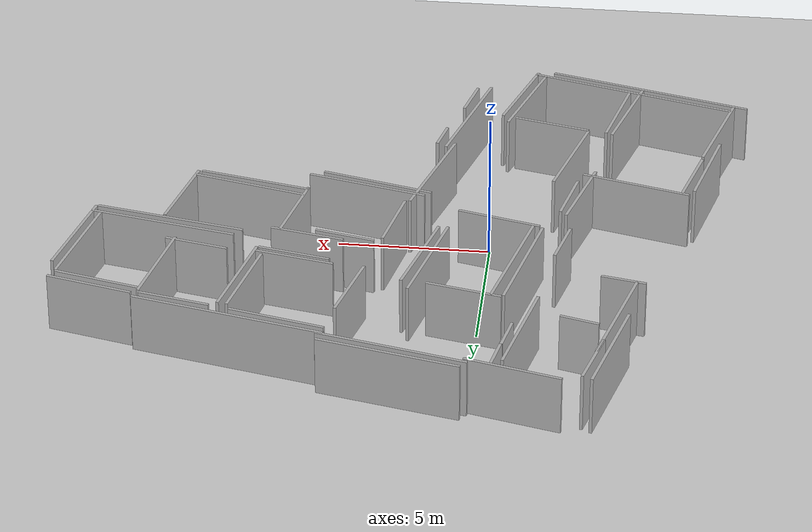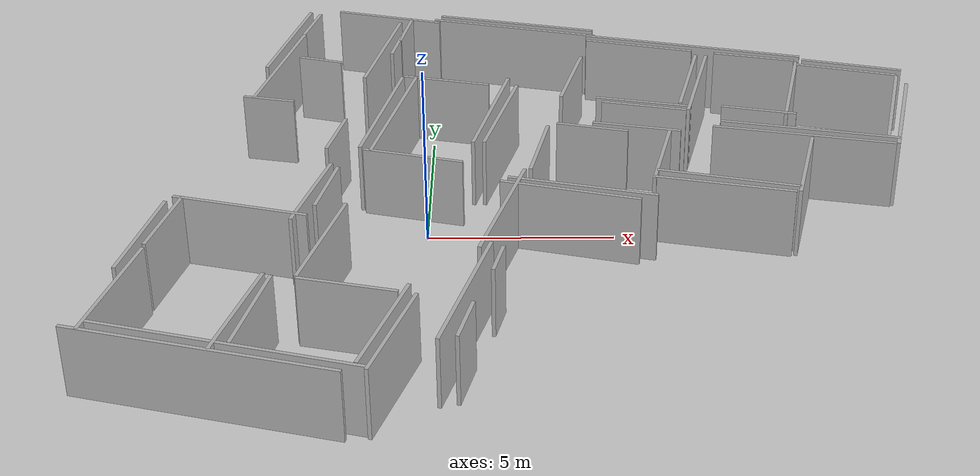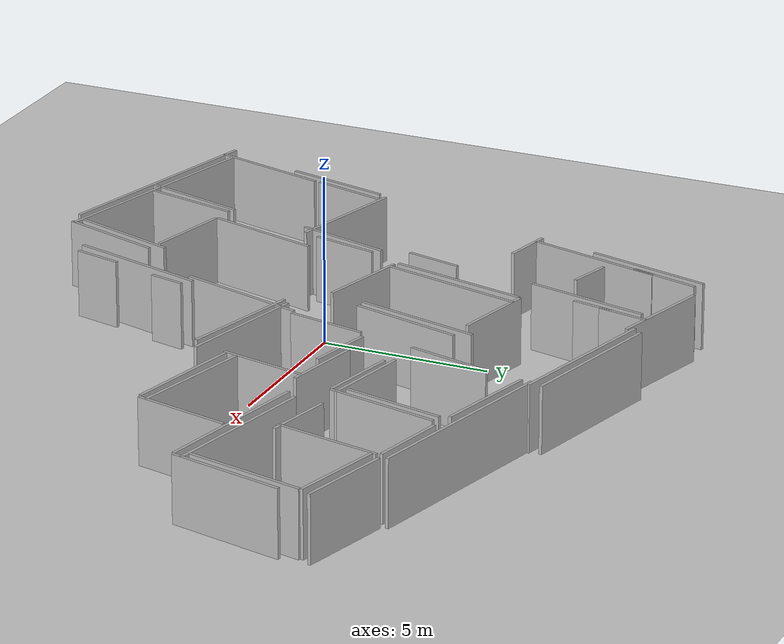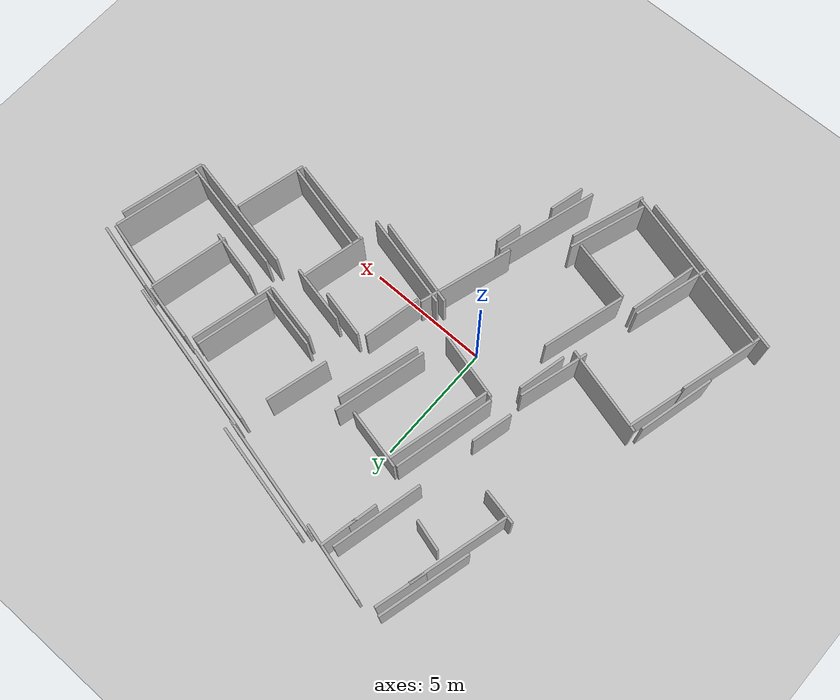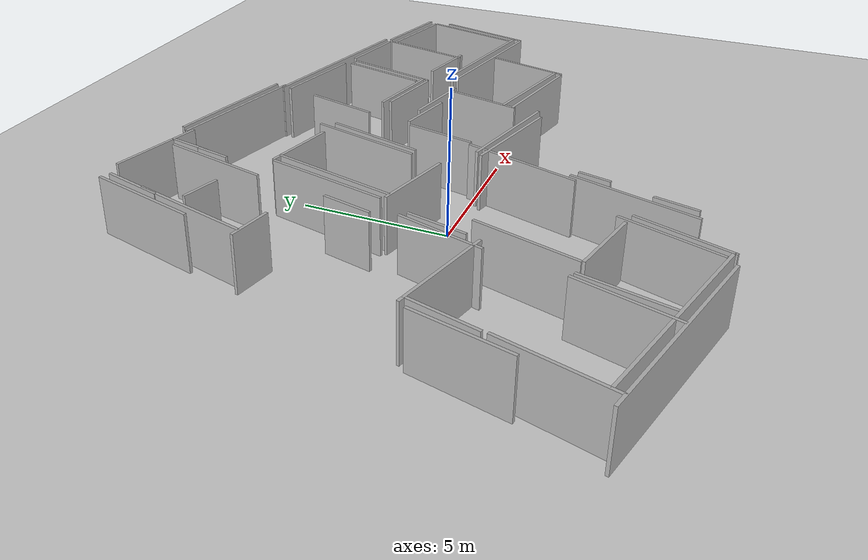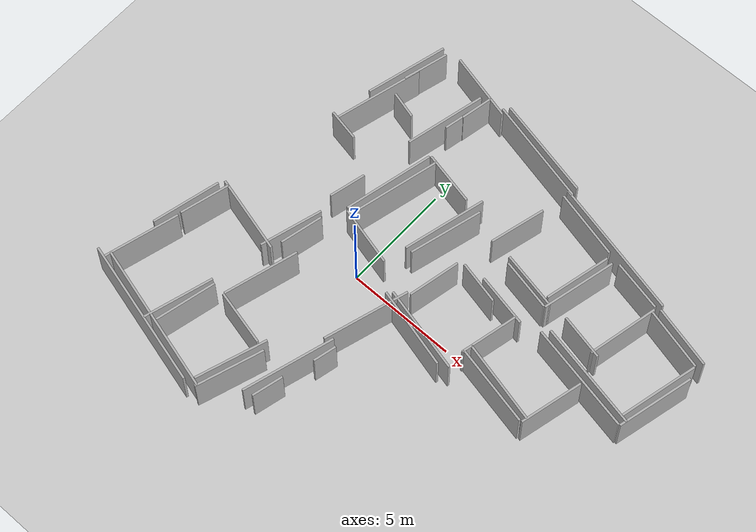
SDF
<?xml version="1.0" ?>
<sdf version="1.6">
  <world name="slam_world">
    <light name="sun" type="directional">
      <pose>0 0 10 0 0 0</pose>
      <diffuse>0.8 0.8 0.8 1</diffuse>
      <direction>-0.5 0.1 -0.9</direction>
    </light>
    <model name="ground_plane">
      <static>true</static>
      <link name="link">
        <collision name="collision">
          <geometry>
            <plane>
              <normal>0 0 1</normal>
              <size>100 100</size>
            </plane>
          </geometry>
        </collision>
        <visual name="visual">
          <geometry>
            <plane>
              <normal>0 0 1</normal>
              <size>100 100</size>
            </plane>
          </geometry>
          <material>
            <ambient>0.8 0.8 0.8 1</ambient>
            <diffuse>0.8 0.8 0.8 1</diffuse>
            <specular>0.8 0.8 0.8 1</specular>
          </material>
        </visual>
      </link>
    </model>
    <model name="wall_0">
      <static>true</static>
      <pose>7.635000000000002 7.485 1.0 0 0 -0.22796707182150797</pose>
      <link name="link">
        <collision name="collision">
          <geometry>
            <box>
              <size>6.4159956359087404 0.1 2.0</size>
            </box>
          </geometry>
        </collision>
        <visual name="visual">
          <geometry>
            <box>
              <size>6.4159956359087404 0.1 2.0</size>
            </box>
          </geometry>
          <material>
            <ambient>0.5 0.5 0.5 1</ambient>
            <diffuse>0.7 0.7 0.7 1</diffuse>
          </material>
        </visual>
      </link>
    </model>
    <model name="wall_1">
      <static>true</static>
      <pose>9.410000000000002 6.76 1.0 0 0 -0.21406068356382144</pose>
      <link name="link">
        <collision name="collision">
          <geometry>
            <box>
              <size>2.3537204591879646 0.1 2.0</size>
            </box>
          </geometry>
        </collision>
        <visual name="visual">
          <geometry>
            <box>
              <size>2.3537204591879646 0.1 2.0</size>
            </box>
          </geometry>
          <material>
            <ambient>0.5 0.5 0.5 1</ambient>
            <diffuse>0.7 0.7 0.7 1</diffuse>
          </material>
        </visual>
      </link>
    </model>
    <model name="wall_2">
      <static>true</static>
      <pose>1.160000000000001 -5.34 1.0 0 0 1.2860658882721843</pose>
      <link name="link">
        <collision name="collision">
          <geometry>
            <box>
              <size>4.272001872658766 0.1 2.0</size>
            </box>
          </geometry>
        </collision>
        <visual name="visual">
          <geometry>
            <box>
              <size>4.272001872658766 0.1 2.0</size>
            </box>
          </geometry>
          <material>
            <ambient>0.5 0.5 0.5 1</ambient>
            <diffuse>0.7 0.7 0.7 1</diffuse>
          </material>
        </visual>
      </link>
    </model>
    <model name="wall_3">
      <static>true</static>
      <pose>-4.1899999999999995 -6.19 1.0 0 0 1.2882413743253092</pose>
      <link name="link">
        <collision name="collision">
          <geometry>
            <box>
              <size>3.228002478313794 0.1 2.0</size>
            </box>
          </geometry>
        </collision>
        <visual name="visual">
          <geometry>
            <box>
              <size>3.228002478313794 0.1 2.0</size>
            </box>
          </geometry>
          <material>
            <ambient>0.5 0.5 0.5 1</ambient>
            <diffuse>0.7 0.7 0.7 1</diffuse>
          </material>
        </visual>
      </link>
    </model>
    <model name="wall_4">
      <static>true</static>
      <pose>12.010000000000003 5.91 1.0 0 0 -0.24497866312686387</pose>
      <link name="link">
        <collision name="collision">
          <geometry>
            <box>
              <size>2.886173937932363 0.1 2.0</size>
            </box>
          </geometry>
        </collision>
        <visual name="visual">
          <geometry>
            <box>
              <size>2.886173937932363 0.1 2.0</size>
            </box>
          </geometry>
          <material>
            <ambient>0.5 0.5 0.5 1</ambient>
            <diffuse>0.7 0.7 0.7 1</diffuse>
          </material>
        </visual>
      </link>
    </model>
    <model name="wall_5">
      <static>true</static>
      <pose>1.1850000000000014 -6.590000000000001 1.0 0 0 1.3258176636680328</pose>
      <link name="link">
        <collision name="collision">
          <geometry>
            <box>
              <size>1.4430869689661816 0.1 2.0</size>
            </box>
          </geometry>
        </collision>
        <visual name="visual">
          <geometry>
            <box>
              <size>1.4430869689661816 0.1 2.0</size>
            </box>
          </geometry>
          <material>
            <ambient>0.5 0.5 0.5 1</ambient>
            <diffuse>0.7 0.7 0.7 1</diffuse>
          </material>
        </visual>
      </link>
    </model>
    <model name="wall_6">
      <static>true</static>
      <pose>-3.9149999999999987 8.735000000000001 1.0 0 0 1.308676485529424</pose>
      <link name="link">
        <collision name="collision">
          <geometry>
            <box>
              <size>2.122498527679113 0.1 2.0</size>
            </box>
          </geometry>
        </collision>
        <visual name="visual">
          <geometry>
            <box>
              <size>2.122498527679113 0.1 2.0</size>
            </box>
          </geometry>
          <material>
            <ambient>0.5 0.5 0.5 1</ambient>
            <diffuse>0.7 0.7 0.7 1</diffuse>
          </material>
        </visual>
      </link>
    </model>
    <model name="wall_7">
      <static>true</static>
      <pose>-6.539999999999999 -2.215 1.0 0 0 1.3101939350475553</pose>
      <link name="link">
        <collision name="collision">
          <geometry>
            <box>
              <size>2.328626204439004 0.1 2.0</size>
            </box>
          </geometry>
        </collision>
        <visual name="visual">
          <geometry>
            <box>
              <size>2.328626204439004 0.1 2.0</size>
            </box>
          </geometry>
          <material>
            <ambient>0.5 0.5 0.5 1</ambient>
            <diffuse>0.7 0.7 0.7 1</diffuse>
          </material>
        </visual>
      </link>
    </model>
    <model name="wall_8">
      <static>true</static>
      <pose>-1.4899999999999993 9.56 1.0 0 0 -0.25255427577805983</pose>
      <link name="link">
        <collision name="collision">
          <geometry>
            <box>
              <size>3.2015621187164243 0.1 2.0</size>
            </box>
          </geometry>
        </collision>
        <visual name="visual">
          <geometry>
            <box>
              <size>3.2015621187164243 0.1 2.0</size>
            </box>
          </geometry>
          <material>
            <ambient>0.5 0.5 0.5 1</ambient>
            <diffuse>0.7 0.7 0.7 1</diffuse>
          </material>
        </visual>
      </link>
    </model>
    <model name="wall_9">
      <static>true</static>
      <pose>-4.889999999999999 -7.69 1.0 0 0 -0.2624593998262763</pose>
      <link name="link">
        <collision name="collision">
          <geometry>
            <box>
              <size>6.937578828380978 0.1 2.0</size>
            </box>
          </geometry>
        </collision>
        <visual name="visual">
          <geometry>
            <box>
              <size>6.937578828380978 0.1 2.0</size>
            </box>
          </geometry>
          <material>
            <ambient>0.5 0.5 0.5 1</ambient>
            <diffuse>0.7 0.7 0.7 1</diffuse>
          </material>
        </visual>
      </link>
    </model>
    <model name="wall_10">
      <static>true</static>
      <pose>3.985000000000002 5.5600000000000005 1.0 0 0 1.3164282682416306</pose>
      <link name="link">
        <collision name="collision">
          <geometry>
            <box>
              <size>2.583118270617898 0.1 2.0</size>
            </box>
          </geometry>
        </collision>
        <visual name="visual">
          <geometry>
            <box>
              <size>2.583118270617898 0.1 2.0</size>
            </box>
          </geometry>
          <material>
            <ambient>0.5 0.5 0.5 1</ambient>
            <diffuse>0.7 0.7 0.7 1</diffuse>
          </material>
        </visual>
      </link>
    </model>
    <model name="wall_11">
      <static>true</static>
      <pose>2.035000000000001 -1.6400000000000001 1.0 0 0 1.2769269917624289</pose>
      <link name="link">
        <collision name="collision">
          <geometry>
            <box>
              <size>3.9702015062210636 0.1 2.0</size>
            </box>
          </geometry>
        </collision>
        <visual name="visual">
          <geometry>
            <box>
              <size>3.9702015062210636 0.1 2.0</size>
            </box>
          </geometry>
          <material>
            <ambient>0.5 0.5 0.5 1</ambient>
            <diffuse>0.7 0.7 0.7 1</diffuse>
          </material>
        </visual>
      </link>
    </model>
    <model name="wall_12">
      <static>true</static>
      <pose>9.185 3.4850000000000003 1.0 0 0 -0.21608497229678686</pose>
      <link name="link">
        <collision name="collision">
          <geometry>
            <box>
              <size>2.0988091861815366 0.1 2.0</size>
            </box>
          </geometry>
        </collision>
        <visual name="visual">
          <geometry>
            <box>
              <size>2.0988091861815366 0.1 2.0</size>
            </box>
          </geometry>
          <material>
            <ambient>0.5 0.5 0.5 1</ambient>
            <diffuse>0.7 0.7 0.7 1</diffuse>
          </material>
        </visual>
      </link>
    </model>
    <model name="wall_13">
      <static>true</static>
      <pose>-0.9399999999999991 8.66 1.0 0 0 1.373400766945016</pose>
      <link name="link">
        <collision name="collision">
          <geometry>
            <box>
              <size>1.5297058540778354 0.1 2.0</size>
            </box>
          </geometry>
        </collision>
        <visual name="visual">
          <geometry>
            <box>
              <size>1.5297058540778354 0.1 2.0</size>
            </box>
          </geometry>
          <material>
            <ambient>0.5 0.5 0.5 1</ambient>
            <diffuse>0.7 0.7 0.7 1</diffuse>
          </material>
        </visual>
      </link>
    </model>
    <model name="wall_14">
      <static>true</static>
      <pose>-1.3649999999999989 3.5100000000000007 1.0 0 0 1.3431070070262408</pose>
      <link name="link">
        <collision name="collision">
          <geometry>
            <box>
              <size>4.208622102303793 0.1 2.0</size>
            </box>
          </geometry>
        </collision>
        <visual name="visual">
          <geometry>
            <box>
              <size>4.208622102303793 0.1 2.0</size>
            </box>
          </geometry>
          <material>
            <ambient>0.5 0.5 0.5 1</ambient>
            <diffuse>0.7 0.7 0.7 1</diffuse>
          </material>
        </visual>
      </link>
    </model>
    <model name="wall_15">
      <static>true</static>
      <pose>-4.414999999999999 8.06 1.0 0 0 1.3194685426340562</pose>
      <link name="link">
        <collision name="collision">
          <geometry>
            <box>
              <size>3.8200130889828103 0.1 2.0</size>
            </box>
          </geometry>
        </collision>
        <visual name="visual">
          <geometry>
            <box>
              <size>3.8200130889828103 0.1 2.0</size>
            </box>
          </geometry>
          <material>
            <ambient>0.5 0.5 0.5 1</ambient>
            <diffuse>0.7 0.7 0.7 1</diffuse>
          </material>
        </visual>
      </link>
    </model>
    <model name="wall_16">
      <static>true</static>
      <pose>-2.564999999999999 -0.565 1.0 0 0 1.3439974787410107</pose>
      <link name="link">
        <collision name="collision">
          <geometry>
            <box>
              <size>2.00124960961895 0.1 2.0</size>
            </box>
          </geometry>
        </collision>
        <visual name="visual">
          <geometry>
            <box>
              <size>2.00124960961895 0.1 2.0</size>
            </box>
          </geometry>
          <material>
            <ambient>0.5 0.5 0.5 1</ambient>
            <diffuse>0.7 0.7 0.7 1</diffuse>
          </material>
        </visual>
      </link>
    </model>
    <model name="wall_17">
      <static>true</static>
      <pose>-4.3149999999999995 -7.515000000000001 1.0 0 0 -0.26750518132705736</pose>
      <link name="link">
        <collision name="collision">
          <geometry>
            <box>
              <size>6.998928489418935 0.1 2.0</size>
            </box>
          </geometry>
        </collision>
        <visual name="visual">
          <geometry>
            <box>
              <size>6.998928489418935 0.1 2.0</size>
            </box>
          </geometry>
          <material>
            <ambient>0.5 0.5 0.5 1</ambient>
            <diffuse>0.7 0.7 0.7 1</diffuse>
          </material>
        </visual>
      </link>
    </model>
    <model name="wall_18">
      <static>true</static>
      <pose>10.260000000000002 2.0600000000000005 1.0 0 0 -0.2013171083746408</pose>
      <link name="link">
        <collision name="collision">
          <geometry>
            <box>
              <size>5.000999900019994 0.1 2.0</size>
            </box>
          </geometry>
        </collision>
        <visual name="visual">
          <geometry>
            <box>
              <size>5.000999900019994 0.1 2.0</size>
            </box>
          </geometry>
          <material>
            <ambient>0.5 0.5 0.5 1</ambient>
            <diffuse>0.7 0.7 0.7 1</diffuse>
          </material>
        </visual>
      </link>
    </model>
    <model name="wall_19">
      <static>true</static>
      <pose>10.460000000000003 2.3599999999999994 1.0 0 0 -0.20539538918976735</pose>
      <link name="link">
        <collision name="collision">
          <geometry>
            <box>
              <size>4.903060268852506 0.1 2.0</size>
            </box>
          </geometry>
        </collision>
        <visual name="visual">
          <geometry>
            <box>
              <size>4.903060268852506 0.1 2.0</size>
            </box>
          </geometry>
          <material>
            <ambient>0.5 0.5 0.5 1</ambient>
            <diffuse>0.7 0.7 0.7 1</diffuse>
          </material>
        </visual>
      </link>
    </model>
    <model name="wall_20">
      <static>true</static>
      <pose>-1.1649999999999991 7.660000000000001 1.0 0 0 1.3654009376051295</pose>
      <link name="link">
        <collision name="collision">
          <geometry>
            <box>
              <size>1.2257650672131273 0.1 2.0</size>
            </box>
          </geometry>
        </collision>
        <visual name="visual">
          <geometry>
            <box>
              <size>1.2257650672131273 0.1 2.0</size>
            </box>
          </geometry>
          <material>
            <ambient>0.5 0.5 0.5 1</ambient>
            <diffuse>0.7 0.7 0.7 1</diffuse>
          </material>
        </visual>
      </link>
    </model>
    <model name="wall_21">
      <static>true</static>
      <pose>1.9350000000000023 -4.015000000000001 1.0 0 0 1.3370531459259951</pose>
      <link name="link">
        <collision name="collision">
          <geometry>
            <box>
              <size>1.079351657246145 0.1 2.0</size>
            </box>
          </geometry>
        </collision>
        <visual name="visual">
          <geometry>
            <box>
              <size>1.079351657246145 0.1 2.0</size>
            </box>
          </geometry>
          <material>
            <ambient>0.5 0.5 0.5 1</ambient>
            <diffuse>0.7 0.7 0.7 1</diffuse>
          </material>
        </visual>
      </link>
    </model>
    <model name="wall_22">
      <static>true</static>
      <pose>0.3850000000000011 5.335 1.0 0 0 -0.22082876972934792</pose>
      <link name="link">
        <collision name="collision">
          <geometry>
            <box>
              <size>2.510975905897944 0.1 2.0</size>
            </box>
          </geometry>
        </collision>
        <visual name="visual">
          <geometry>
            <box>
              <size>2.510975905897944 0.1 2.0</size>
            </box>
          </geometry>
          <material>
            <ambient>0.5 0.5 0.5 1</ambient>
            <diffuse>0.7 0.7 0.7 1</diffuse>
          </material>
        </visual>
      </link>
    </model>
    <model name="wall_23">
      <static>true</static>
      <pose>2.410000000000001 9.084999999999999 1.0 0 0 -0.2244160090371457</pose>
      <link name="link">
        <collision name="collision">
          <geometry>
            <box>
              <size>4.718315377335432 0.1 2.0</size>
            </box>
          </geometry>
        </collision>
        <visual name="visual">
          <geometry>
            <box>
              <size>4.718315377335432 0.1 2.0</size>
            </box>
          </geometry>
          <material>
            <ambient>0.5 0.5 0.5 1</ambient>
            <diffuse>0.7 0.7 0.7 1</diffuse>
          </material>
        </visual>
      </link>
    </model>
    <model name="wall_24">
      <static>true</static>
      <pose>5.985000000000002 3.76 1.0 0 0 -0.20963984587421255</pose>
      <link name="link">
        <collision name="collision">
          <geometry>
            <box>
              <size>2.402602755346792 0.1 2.0</size>
            </box>
          </geometry>
        </collision>
        <visual name="visual">
          <geometry>
            <box>
              <size>2.402602755346792 0.1 2.0</size>
            </box>
          </geometry>
          <material>
            <ambient>0.5 0.5 0.5 1</ambient>
            <diffuse>0.7 0.7 0.7 1</diffuse>
          </material>
        </visual>
      </link>
    </model>
    <model name="wall_25">
      <static>true</static>
      <pose>7.835000000000001 -0.5400000000000005 1.0 0 0 -0.21576619640704234</pose>
      <link name="link">
        <collision name="collision">
          <geometry>
            <box>
              <size>3.7366428783066743 0.1 2.0</size>
            </box>
          </geometry>
        </collision>
        <visual name="visual">
          <geometry>
            <box>
              <size>3.7366428783066743 0.1 2.0</size>
            </box>
          </geometry>
          <material>
            <ambient>0.5 0.5 0.5 1</ambient>
            <diffuse>0.7 0.7 0.7 1</diffuse>
          </material>
        </visual>
      </link>
    </model>
    <model name="wall_26">
      <static>true</static>
      <pose>4.110000000000002 -0.6150000000000002 1.0 0 0 -0.23893644058616323</pose>
      <link name="link">
        <collision name="collision">
          <geometry>
            <box>
              <size>4.014037867285261 0.1 2.0</size>
            </box>
          </geometry>
        </collision>
        <visual name="visual">
          <geometry>
            <box>
              <size>4.014037867285261 0.1 2.0</size>
            </box>
          </geometry>
          <material>
            <ambient>0.5 0.5 0.5 1</ambient>
            <diffuse>0.7 0.7 0.7 1</diffuse>
          </material>
        </visual>
      </link>
    </model>
    <model name="wall_27">
      <static>true</static>
      <pose>-1.5649999999999986 7.335 1.0 0 0 1.3419974814076712</pose>
      <link name="link">
        <collision name="collision">
          <geometry>
            <box>
              <size>3.7476659402887025 0.1 2.0</size>
            </box>
          </geometry>
        </collision>
        <visual name="visual">
          <geometry>
            <box>
              <size>3.7476659402887025 0.1 2.0</size>
            </box>
          </geometry>
          <material>
            <ambient>0.5 0.5 0.5 1</ambient>
            <diffuse>0.7 0.7 0.7 1</diffuse>
          </material>
        </visual>
      </link>
    </model>
    <model name="wall_28">
      <static>true</static>
      <pose>-4.514999999999999 6.359999999999999 1.0 0 0 1.3140879963615109</pose>
      <link name="link">
        <collision name="collision">
          <geometry>
            <box>
              <size>4.135516896350443 0.1 2.0</size>
            </box>
          </geometry>
        </collision>
        <visual name="visual">
          <geometry>
            <box>
              <size>4.135516896350443 0.1 2.0</size>
            </box>
          </geometry>
          <material>
            <ambient>0.5 0.5 0.5 1</ambient>
            <diffuse>0.7 0.7 0.7 1</diffuse>
          </material>
        </visual>
      </link>
    </model>
    <model name="wall_29">
      <static>true</static>
      <pose>-7.014999999999999 -2.8400000000000003 1.0 0 0 1.3334220798217258</pose>
      <link name="link">
        <collision name="collision">
          <geometry>
            <box>
              <size>3.189435686763413 0.1 2.0</size>
            </box>
          </geometry>
        </collision>
        <visual name="visual">
          <geometry>
            <box>
              <size>3.189435686763413 0.1 2.0</size>
            </box>
          </geometry>
          <material>
            <ambient>0.5 0.5 0.5 1</ambient>
            <diffuse>0.7 0.7 0.7 1</diffuse>
          </material>
        </visual>
      </link>
    </model>
    <model name="wall_30">
      <static>true</static>
      <pose>6.310000000000001 1.0599999999999996 1.0 0 0 1.343997478741011</pose>
      <link name="link">
        <collision name="collision">
          <geometry>
            <box>
              <size>2.668332812825266 0.1 2.0</size>
            </box>
          </geometry>
        </collision>
        <visual name="visual">
          <geometry>
            <box>
              <size>2.668332812825266 0.1 2.0</size>
            </box>
          </geometry>
          <material>
            <ambient>0.5 0.5 0.5 1</ambient>
            <diffuse>0.7 0.7 0.7 1</diffuse>
          </material>
        </visual>
      </link>
    </model>
    <model name="wall_31">
      <static>true</static>
      <pose>1.9600000000000017 3.3600000000000003 1.0 0 0 1.304544277643971</pose>
      <link name="link">
        <collision name="collision">
          <geometry>
            <box>
              <size>3.420526275297413 0.1 2.0</size>
            </box>
          </geometry>
        </collision>
        <visual name="visual">
          <geometry>
            <box>
              <size>3.420526275297413 0.1 2.0</size>
            </box>
          </geometry>
          <material>
            <ambient>0.5 0.5 0.5 1</ambient>
            <diffuse>0.7 0.7 0.7 1</diffuse>
          </material>
        </visual>
      </link>
    </model>
    <model name="wall_32">
      <static>true</static>
      <pose>7.960000000000002 -0.24000000000000066 1.0 0 0 -0.23860932250820077</pose>
      <link name="link">
        <collision name="collision">
          <geometry>
            <box>
              <size>3.807886552931955 0.1 2.0</size>
            </box>
          </geometry>
        </collision>
        <visual name="visual">
          <geometry>
            <box>
              <size>3.807886552931955 0.1 2.0</size>
            </box>
          </geometry>
          <material>
            <ambient>0.5 0.5 0.5 1</ambient>
            <diffuse>0.7 0.7 0.7 1</diffuse>
          </material>
        </visual>
      </link>
    </model>
    <model name="wall_33">
      <static>true</static>
      <pose>5.985000000000002 3.9850000000000003 1.0 0 0 -0.2046418098297775</pose>
      <link name="link">
        <collision name="collision">
          <geometry>
            <box>
              <size>2.7064737205448717 0.1 2.0</size>
            </box>
          </geometry>
        </collision>
        <visual name="visual">
          <geometry>
            <box>
              <size>2.7064737205448717 0.1 2.0</size>
            </box>
          </geometry>
          <material>
            <ambient>0.5 0.5 0.5 1</ambient>
            <diffuse>0.7 0.7 0.7 1</diffuse>
          </material>
        </visual>
      </link>
    </model>
    <model name="wall_34">
      <static>true</static>
      <pose>-7.3149999999999995 -5.215 1.0 0 0 1.3020933021597254</pose>
      <link name="link">
        <collision name="collision">
          <geometry>
            <box>
              <size>3.5784074670165777 0.1 2.0</size>
            </box>
          </geometry>
        </collision>
        <visual name="visual">
          <geometry>
            <box>
              <size>3.5784074670165777 0.1 2.0</size>
            </box>
          </geometry>
          <material>
            <ambient>0.5 0.5 0.5 1</ambient>
            <diffuse>0.7 0.7 0.7 1</diffuse>
          </material>
        </visual>
      </link>
    </model>
    <model name="wall_35">
      <static>true</static>
      <pose>6.060000000000001 7.535 1.0 0 0 -0.23737424697317083</pose>
      <link name="link">
        <collision name="collision">
          <geometry>
            <box>
              <size>3.189435686763412 0.1 2.0</size>
            </box>
          </geometry>
        </collision>
        <visual name="visual">
          <geometry>
            <box>
              <size>3.189435686763412 0.1 2.0</size>
            </box>
          </geometry>
          <material>
            <ambient>0.5 0.5 0.5 1</ambient>
            <diffuse>0.7 0.7 0.7 1</diffuse>
          </material>
        </visual>
      </link>
    </model>
    <model name="wall_36">
      <static>true</static>
      <pose>-1.0149999999999988 3.4350000000000005 1.0 0 0 1.328587739685276</pose>
      <link name="link">
        <collision name="collision">
          <geometry>
            <box>
              <size>4.377784827969506 0.1 2.0</size>
            </box>
          </geometry>
        </collision>
        <visual name="visual">
          <geometry>
            <box>
              <size>4.377784827969506 0.1 2.0</size>
            </box>
          </geometry>
          <material>
            <ambient>0.5 0.5 0.5 1</ambient>
            <diffuse>0.7 0.7 0.7 1</diffuse>
          </material>
        </visual>
      </link>
    </model>
    <model name="wall_37">
      <static>true</static>
      <pose>-0.48999999999999844 -7.040000000000001 1.0 0 0 1.2490457723982544</pose>
      <link name="link">
        <collision name="collision">
          <geometry>
            <box>
              <size>3.1622776601683795 0.1 2.0</size>
            </box>
          </geometry>
        </collision>
        <visual name="visual">
          <geometry>
            <box>
              <size>3.1622776601683795 0.1 2.0</size>
            </box>
          </geometry>
          <material>
            <ambient>0.5 0.5 0.5 1</ambient>
            <diffuse>0.7 0.7 0.7 1</diffuse>
          </material>
        </visual>
      </link>
    </model>
    <model name="wall_38">
      <static>true</static>
      <pose>-4.714999999999999 -1.5150000000000001 1.0 0 0 -0.26147881571224924</pose>
      <link name="link">
        <collision name="collision">
          <geometry>
            <box>
              <size>3.6749149650025923 0.1 2.0</size>
            </box>
          </geometry>
        </collision>
        <visual name="visual">
          <geometry>
            <box>
              <size>3.6749149650025923 0.1 2.0</size>
            </box>
          </geometry>
          <material>
            <ambient>0.5 0.5 0.5 1</ambient>
            <diffuse>0.7 0.7 0.7 1</diffuse>
          </material>
        </visual>
      </link>
    </model>
    <model name="wall_39">
      <static>true</static>
      <pose>13.185000000000002 3.285 1.0 0 0 1.3292306196995702</pose>
      <link name="link">
        <collision name="collision">
          <geometry>
            <box>
              <size>3.5531676008879733 0.1 2.0</size>
            </box>
          </geometry>
        </collision>
        <visual name="visual">
          <geometry>
            <box>
              <size>3.5531676008879733 0.1 2.0</size>
            </box>
          </geometry>
          <material>
            <ambient>0.5 0.5 0.5 1</ambient>
            <diffuse>0.7 0.7 0.7 1</diffuse>
          </material>
        </visual>
      </link>
    </model>
    <model name="wall_40">
      <static>true</static>
      <pose>3.785000000000001 -0.815 1.0 0 0 -0.2546246661945415</pose>
      <link name="link">
        <collision name="collision">
          <geometry>
            <box>
              <size>3.7716044331292222 0.1 2.0</size>
            </box>
          </geometry>
        </collision>
        <visual name="visual">
          <geometry>
            <box>
              <size>3.7716044331292222 0.1 2.0</size>
            </box>
          </geometry>
          <material>
            <ambient>0.5 0.5 0.5 1</ambient>
            <diffuse>0.7 0.7 0.7 1</diffuse>
          </material>
        </visual>
      </link>
    </model>
    <model name="wall_41">
      <static>true</static>
      <pose>-1.6899999999999986 -5.140000000000001 1.0 0 0 -0.23554498072086355</pose>
      <link name="link">
        <collision name="collision">
          <geometry>
            <box>
              <size>2.570992026436488 0.1 2.0</size>
            </box>
          </geometry>
        </collision>
        <visual name="visual">
          <geometry>
            <box>
              <size>2.570992026436488 0.1 2.0</size>
            </box>
          </geometry>
          <material>
            <ambient>0.5 0.5 0.5 1</ambient>
            <diffuse>0.7 0.7 0.7 1</diffuse>
          </material>
        </visual>
      </link>
    </model>
    <model name="wall_42">
      <static>true</static>
      <pose>7.610000000000001 5.185 1.0 0 0 1.3363806510710856</pose>
      <link name="link">
        <collision name="collision">
          <geometry>
            <box>
              <size>3.4441980198589044 0.1 2.0</size>
            </box>
          </geometry>
        </collision>
        <visual name="visual">
          <geometry>
            <box>
              <size>3.4441980198589044 0.1 2.0</size>
            </box>
          </geometry>
          <material>
            <ambient>0.5 0.5 0.5 1</ambient>
            <diffuse>0.7 0.7 0.7 1</diffuse>
          </material>
        </visual>
      </link>
    </model>
    <model name="wall_43">
      <static>true</static>
      <pose>4.485000000000001 2.535 1.0 0 0 -0.22679884805388562</pose>
      <link name="link">
        <collision name="collision">
          <geometry>
            <box>
              <size>2.001249609618949 0.1 2.0</size>
            </box>
          </geometry>
        </collision>
        <visual name="visual">
          <geometry>
            <box>
              <size>2.001249609618949 0.1 2.0</size>
            </box>
          </geometry>
          <material>
            <ambient>0.5 0.5 0.5 1</ambient>
            <diffuse>0.7 0.7 0.7 1</diffuse>
          </material>
        </visual>
      </link>
    </model>
    <model name="wall_44">
      <static>true</static>
      <pose>12.210000000000003 6.21 1.0 0 0 -0.24497866312686445</pose>
      <link name="link">
        <collision name="collision">
          <geometry>
            <box>
              <size>2.886173937932363 0.1 2.0</size>
            </box>
          </geometry>
        </collision>
        <visual name="visual">
          <geometry>
            <box>
              <size>2.886173937932363 0.1 2.0</size>
            </box>
          </geometry>
          <material>
            <ambient>0.5 0.5 0.5 1</ambient>
            <diffuse>0.7 0.7 0.7 1</diffuse>
          </material>
        </visual>
      </link>
    </model>
    <model name="wall_45">
      <static>true</static>
      <pose>-3.864999999999999 -6.115 1.0 0 0 1.3386924887197411</pose>
      <link name="link">
        <collision name="collision">
          <geometry>
            <box>
              <size>2.825774230188958 0.1 2.0</size>
            </box>
          </geometry>
        </collision>
        <visual name="visual">
          <geometry>
            <box>
              <size>2.825774230188958 0.1 2.0</size>
            </box>
          </geometry>
          <material>
            <ambient>0.5 0.5 0.5 1</ambient>
            <diffuse>0.7 0.7 0.7 1</diffuse>
          </material>
        </visual>
      </link>
    </model>
    <model name="wall_46">
      <static>true</static>
      <pose>7.360000000000001 5.41 1.0 0 0 1.3415643935179016</pose>
      <link name="link">
        <collision name="collision">
          <geometry>
            <box>
              <size>3.080584360149872 0.1 2.0</size>
            </box>
          </geometry>
        </collision>
        <visual name="visual">
          <geometry>
            <box>
              <size>3.080584360149872 0.1 2.0</size>
            </box>
          </geometry>
          <material>
            <ambient>0.5 0.5 0.5 1</ambient>
            <diffuse>0.7 0.7 0.7 1</diffuse>
          </material>
        </visual>
      </link>
    </model>
    <model name="wall_47">
      <static>true</static>
      <pose>-3.364999999999999 6.685 1.0 0 0 -0.27300870308671016</pose>
      <link name="link">
        <collision name="collision">
          <geometry>
            <box>
              <size>1.2980754985747178 0.1 2.0</size>
            </box>
          </geometry>
        </collision>
        <visual name="visual">
          <geometry>
            <box>
              <size>1.2980754985747178 0.1 2.0</size>
            </box>
          </geometry>
          <material>
            <ambient>0.5 0.5 0.5 1</ambient>
            <diffuse>0.7 0.7 0.7 1</diffuse>
          </material>
        </visual>
      </link>
    </model>
    <model name="wall_48">
      <static>true</static>
      <pose>10.260000000000002 4.8100000000000005 1.0 0 0 1.3554386270971577</pose>
      <link name="link">
        <collision name="collision">
          <geometry>
            <box>
              <size>3.27566787083184 0.1 2.0</size>
            </box>
          </geometry>
        </collision>
        <visual name="visual">
          <geometry>
            <box>
              <size>3.27566787083184 0.1 2.0</size>
            </box>
          </geometry>
          <material>
            <ambient>0.5 0.5 0.5 1</ambient>
            <diffuse>0.7 0.7 0.7 1</diffuse>
          </material>
        </visual>
      </link>
    </model>
    <model name="wall_49">
      <static>true</static>
      <pose>-0.3899999999999988 1.0099999999999998 1.0 0 0 -0.25367409613864256</pose>
      <link name="link">
        <collision name="collision">
          <geometry>
            <box>
              <size>2.7892651361962697 0.1 2.0</size>
            </box>
          </geometry>
        </collision>
        <visual name="visual">
          <geometry>
            <box>
              <size>2.7892651361962697 0.1 2.0</size>
            </box>
          </geometry>
          <material>
            <ambient>0.5 0.5 0.5 1</ambient>
            <diffuse>0.7 0.7 0.7 1</diffuse>
          </material>
        </visual>
      </link>
    </model>
    <model name="wall_50">
      <static>true</static>
      <pose>-2.4649999999999985 -3.1150000000000007 1.0 0 0 1.2944690518198314</pose>
      <link name="link">
        <collision name="collision">
          <geometry>
            <box>
              <size>3.4820970692960302 0.1 2.0</size>
            </box>
          </geometry>
        </collision>
        <visual name="visual">
          <geometry>
            <box>
              <size>3.4820970692960302 0.1 2.0</size>
            </box>
          </geometry>
          <material>
            <ambient>0.5 0.5 0.5 1</ambient>
            <diffuse>0.7 0.7 0.7 1</diffuse>
          </material>
        </visual>
      </link>
    </model>
    <model name="wall_51">
      <static>true</static>
      <pose>1.6850000000000014 3.585000000000001 1.0 0 0 1.3226828776982198</pose>
      <link name="link">
        <collision name="collision">
          <geometry>
            <box>
              <size>3.86846222677694 0.1 2.0</size>
            </box>
          </geometry>
        </collision>
        <visual name="visual">
          <geometry>
            <box>
              <size>3.86846222677694 0.1 2.0</size>
            </box>
          </geometry>
          <material>
            <ambient>0.5 0.5 0.5 1</ambient>
            <diffuse>0.7 0.7 0.7 1</diffuse>
          </material>
        </visual>
      </link>
    </model>
    <model name="wall_52">
      <static>true</static>
      <pose>12.985000000000003 3.7350000000000003 1.0 0 0 1.335784111074239</pose>
      <link name="link">
        <collision name="collision">
          <geometry>
            <box>
              <size>3.6503424496887953 0.1 2.0</size>
            </box>
          </geometry>
        </collision>
        <visual name="visual">
          <geometry>
            <box>
              <size>3.6503424496887953 0.1 2.0</size>
            </box>
          </geometry>
          <material>
            <ambient>0.5 0.5 0.5 1</ambient>
            <diffuse>0.7 0.7 0.7 1</diffuse>
          </material>
        </visual>
      </link>
    </model>
    <model name="wall_53">
      <static>true</static>
      <pose>3.0100000000000016 1.4349999999999996 1.0 0 0 1.361156480920684</pose>
      <link name="link">
        <collision name="collision">
          <geometry>
            <box>
              <size>2.402602755346792 0.1 2.0</size>
            </box>
          </geometry>
        </collision>
        <visual name="visual">
          <geometry>
            <box>
              <size>2.402602755346792 0.1 2.0</size>
            </box>
          </geometry>
          <material>
            <ambient>0.5 0.5 0.5 1</ambient>
            <diffuse>0.7 0.7 0.7 1</diffuse>
          </material>
        </visual>
      </link>
    </model>
    <model name="wall_54">
      <static>true</static>
      <pose>5.710000000000002 2.5600000000000005 1.0 0 0 -0.20539538918976735</pose>
      <link name="link">
        <collision name="collision">
          <geometry>
            <box>
              <size>2.451530134426253 0.1 2.0</size>
            </box>
          </geometry>
        </collision>
        <visual name="visual">
          <geometry>
            <box>
              <size>2.451530134426253 0.1 2.0</size>
            </box>
          </geometry>
          <material>
            <ambient>0.5 0.5 0.5 1</ambient>
            <diffuse>0.7 0.7 0.7 1</diffuse>
          </material>
        </visual>
      </link>
    </model>
    <model name="wall_55">
      <static>true</static>
      <pose>10.110000000000001 0.4849999999999999 1.0 0 0 1.3299498715534852</pose>
      <link name="link">
        <collision name="collision">
          <geometry>
            <box>
              <size>2.934706118165838 0.1 2.0</size>
            </box>
          </geometry>
        </collision>
        <visual name="visual">
          <geometry>
            <box>
              <size>2.934706118165838 0.1 2.0</size>
            </box>
          </geometry>
          <material>
            <ambient>0.5 0.5 0.5 1</ambient>
            <diffuse>0.7 0.7 0.7 1</diffuse>
          </material>
        </visual>
      </link>
    </model>
    <model name="wall_56">
      <static>true</static>
      <pose>-2.939999999999999 -0.7900000000000005 1.0 0 0 1.2924966677897853</pose>
      <link name="link">
        <collision name="collision">
          <geometry>
            <box>
              <size>2.912043955712207 0.1 2.0</size>
            </box>
          </geometry>
        </collision>
        <visual name="visual">
          <geometry>
            <box>
              <size>2.912043955712207 0.1 2.0</size>
            </box>
          </geometry>
          <material>
            <ambient>0.5 0.5 0.5 1</ambient>
            <diffuse>0.7 0.7 0.7 1</diffuse>
          </material>
        </visual>
      </link>
    </model>
    <model name="wall_57">
      <static>true</static>
      <pose>-2.5399999999999987 2.2350000000000003 1.0 0 0 1.3329603993374461</pose>
      <link name="link">
        <collision name="collision">
          <geometry>
            <box>
              <size>1.6977926846349647 0.1 2.0</size>
            </box>
          </geometry>
        </collision>
        <visual name="visual">
          <geometry>
            <box>
              <size>1.6977926846349647 0.1 2.0</size>
            </box>
          </geometry>
          <material>
            <ambient>0.5 0.5 0.5 1</ambient>
            <diffuse>0.7 0.7 0.7 1</diffuse>
          </material>
        </visual>
      </link>
    </model>
    <model name="wall_58">
      <static>true</static>
      <pose>2.3350000000000017 8.785 1.0 0 0 -0.23281381310673402</pose>
      <link name="link">
        <collision name="collision">
          <geometry>
            <box>
              <size>4.984475900232641 0.1 2.0</size>
            </box>
          </geometry>
        </collision>
        <visual name="visual">
          <geometry>
            <box>
              <size>4.984475900232641 0.1 2.0</size>
            </box>
          </geometry>
          <material>
            <ambient>0.5 0.5 0.5 1</ambient>
            <diffuse>0.7 0.7 0.7 1</diffuse>
          </material>
        </visual>
      </link>
    </model>
    <model name="wall_59">
      <static>true</static>
      <pose>-0.714999999999999 -6.715000000000001 1.0 0 0 1.2490457723982549</pose>
      <link name="link">
        <collision name="collision">
          <geometry>
            <box>
              <size>3.3203915431767985 0.1 2.0</size>
            </box>
          </geometry>
        </collision>
        <visual name="visual">
          <geometry>
            <box>
              <size>3.3203915431767985 0.1 2.0</size>
            </box>
          </geometry>
          <material>
            <ambient>0.5 0.5 0.5 1</ambient>
            <diffuse>0.7 0.7 0.7 1</diffuse>
          </material>
        </visual>
      </link>
    </model>
    <model name="wall_60">
      <static>true</static>
      <pose>-4.614999999999998 4.26 1.0 0 0 -0.20401797959254903</pose>
      <link name="link">
        <collision name="collision">
          <geometry>
            <box>
              <size>1.480709289496085 0.1 2.0</size>
            </box>
          </geometry>
        </collision>
        <visual name="visual">
          <geometry>
            <box>
              <size>1.480709289496085 0.1 2.0</size>
            </box>
          </geometry>
          <material>
            <ambient>0.5 0.5 0.5 1</ambient>
            <diffuse>0.7 0.7 0.7 1</diffuse>
          </material>
        </visual>
      </link>
    </model>
  </world>
</sdf>
